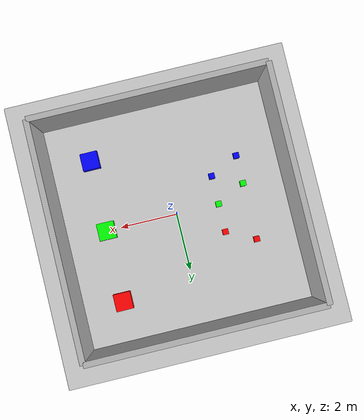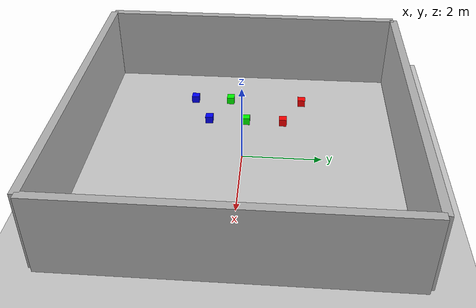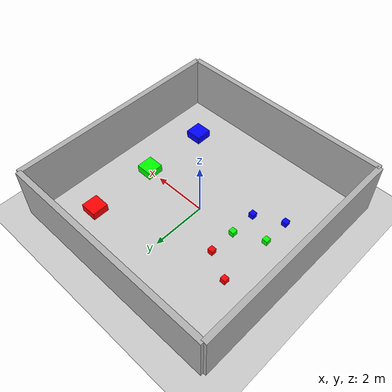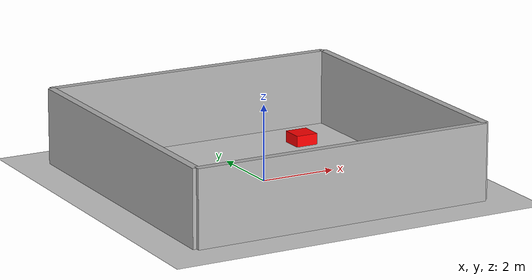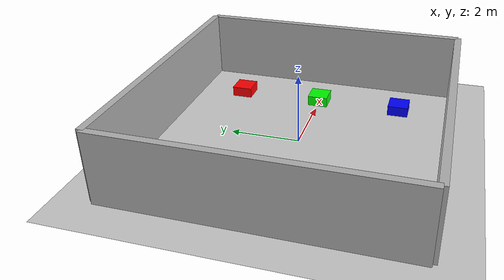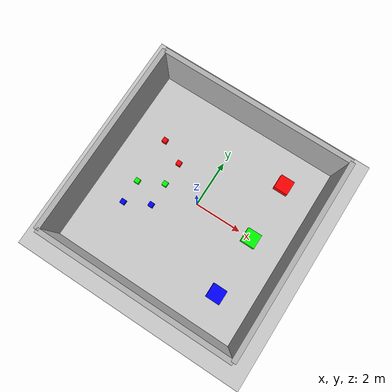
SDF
<?xml version="1.0"?>
<sdf version="1.6">
  <world name="warehouse">

    <!-- ===== LIGHTING ===== -->
    <include>
      <uri>model://sun</uri>
    </include>

    <!-- ===== GROUND PLANE ===== -->
    <include>
      <uri>model://ground_plane</uri>
    </include>

    <!-- ===== WAREHOUSE WALLS ===== -->

    <!-- South Wall -->
    <model name="wall_south">
      <static>true</static>
      <pose>0 -4 1 0 0 0</pose>
      <link name="link">
        <collision name="col"><geometry><box><size>8 0.2 2</size></box></geometry></collision>
        <visual name="vis">
          <geometry><box><size>8 0.2 2</size></box></geometry>
          <material><ambient>0.7 0.7 0.7 1</ambient></material>
        </visual>
      </link>
    </model>

    <!-- North Wall -->
    <model name="wall_north">
      <static>true</static>
      <pose>0 4 1 0 0 0</pose>
      <link name="link">
        <collision name="col"><geometry><box><size>8 0.2 2</size></box></geometry></collision>
        <visual name="vis">
          <geometry><box><size>8 0.2 2</size></box></geometry>
          <material><ambient>0.7 0.7 0.7 1</ambient></material>
        </visual>
      </link>
    </model>

    <!-- West Wall -->
    <model name="wall_west">
      <static>true</static>
      <pose>-4 0 1 0 0 0</pose>
      <link name="link">
        <collision name="col"><geometry><box><size>0.2 8 2</size></box></geometry></collision>
        <visual name="vis">
          <geometry><box><size>0.2 8 2</size></box></geometry>
          <material><ambient>0.7 0.7 0.7 1</ambient></material>
        </visual>
      </link>
    </model>

    <!-- East Wall -->
    <model name="wall_east">
      <static>true</static>
      <pose>4 0 1 0 0 0</pose>
      <link name="link">
        <collision name="col"><geometry><box><size>0.2 8 2</size></box></geometry></collision>
        <visual name="vis">
          <geometry><box><size>0.2 8 2</size></box></geometry>
          <material><ambient>0.7 0.7 0.7 1</ambient></material>
        </visual>
      </link>
    </model>

    <!-- ===== SORTING BINS ===== -->

    <!-- Red Bin -->
    <model name="bin_red">
      <static>true</static>
      <pose>2.5 2.5 0.15 0 0 0</pose>
      <link name="link">
        <collision name="col"><geometry><box><size>0.6 0.6 0.3</size></box></geometry></collision>
        <visual name="vis">
          <geometry><box><size>0.6 0.6 0.3</size></box></geometry>
          <material><ambient>1 0 0 1</ambient><diffuse>1 0 0 1</diffuse></material>
        </visual>
      </link>
    </model>

    <!-- Green Bin -->
    <model name="bin_green">
      <static>true</static>
      <pose>2.5 0 0.15 0 0 0</pose>
      <link name="link">
        <collision name="col"><geometry><box><size>0.6 0.6 0.3</size></box></geometry></collision>
        <visual name="vis">
          <geometry><box><size>0.6 0.6 0.3</size></box></geometry>
          <material><ambient>0 1 0 1</ambient><diffuse>0 1 0 1</diffuse></material>
        </visual>
      </link>
    </model>

    <!-- Blue Bin -->
    <model name="bin_blue">
      <static>true</static>
      <pose>2.5 -2.5 0.15 0 0 0</pose>
      <link name="link">
        <collision name="col"><geometry><box><size>0.6 0.6 0.3</size></box></geometry></collision>
        <visual name="vis">
          <geometry><box><size>0.6 0.6 0.3</size></box></geometry>
          <material><ambient>0 0 1 1</ambient><diffuse>0 0 1 1</diffuse></material>
        </visual>
      </link>
    </model>

    <!-- ===== COLOURED PACKAGES (to be picked) ===== -->

    <!-- Red Package 1 -->
    <model name="pkg_red_1">
      <static>false</static>
      <pose>-1.5 1.0 0.1 0 0 0</pose>
      <link name="link">
        <inertial><mass>0.3</mass></inertial>
        <collision name="col"><geometry><box><size>0.2 0.2 0.2</size></box></geometry></collision>
        <visual name="vis">
          <geometry><box><size>0.2 0.2 0.2</size></box></geometry>
          <material><ambient>1 0 0 1</ambient><diffuse>1 0 0 1</diffuse></material>
        </visual>
      </link>
    </model>

    <!-- Green Package 1 -->
    <model name="pkg_green_1">
      <static>false</static>
      <pose>-1.5 0.0 0.1 0 0 0</pose>
      <link name="link">
        <inertial><mass>0.3</mass></inertial>
        <collision name="col"><geometry><box><size>0.2 0.2 0.2</size></box></geometry></collision>
        <visual name="vis">
          <geometry><box><size>0.2 0.2 0.2</size></box></geometry>
          <material><ambient>0 1 0 1</ambient><diffuse>0 1 0 1</diffuse></material>
        </visual>
      </link>
    </model>

    <!-- Blue Package 1 -->
    <model name="pkg_blue_1">
      <static>false</static>
      <pose>-1.5 -1.0 0.1 0 0 0</pose>
      <link name="link">
        <inertial><mass>0.3</mass></inertial>
        <collision name="col"><geometry><box><size>0.2 0.2 0.2</size></box></geometry></collision>
        <visual name="vis">
          <geometry><box><size>0.2 0.2 0.2</size></box></geometry>
          <material><ambient>0 0 1 1</ambient><diffuse>0 0 1 1</diffuse></material>
        </visual>
      </link>
    </model>

    <!-- Red Package 2 -->
    <model name="pkg_red_2">
      <static>false</static>
      <pose>-2.5 1.5 0.1 0 0 0</pose>
      <link name="link">
        <inertial><mass>0.3</mass></inertial>
        <collision name="col"><geometry><box><size>0.2 0.2 0.2</size></box></geometry></collision>
        <visual name="vis">
          <geometry><box><size>0.2 0.2 0.2</size></box></geometry>
          <material><ambient>1 0 0 1</ambient><diffuse>1 0 0 1</diffuse></material>
        </visual>
      </link>
    </model>

    <!-- Green Package 2 -->
    <model name="pkg_green_2">
      <static>false</static>
      <pose>-2.5 -0.5 0.1 0 0 0</pose>
      <link name="link">
        <inertial><mass>0.3</mass></inertial>
        <collision name="col"><geometry><box><size>0.2 0.2 0.2</size></box></geometry></collision>
        <visual name="vis">
          <geometry><box><size>0.2 0.2 0.2</size></box></geometry>
          <material><ambient>0 1 0 1</ambient><diffuse>0 1 0 1</diffuse></material>
        </visual>
      </link>
    </model>

    <!-- Blue Package 2 -->
    <model name="pkg_blue_2">
      <static>false</static>
      <pose>-2.5 -1.5 0.1 0 0 0</pose>
      <link name="link">
        <inertial><mass>0.3</mass></inertial>
        <collision name="col"><geometry><box><size>0.2 0.2 0.2</size></box></geometry></collision>
        <visual name="vis">
          <geometry><box><size>0.2 0.2 0.2</size></box></geometry>
          <material><ambient>0 0 1 1</ambient><diffuse>0 0 1 1</diffuse></material>
        </visual>
      </link>
    </model>

  </world>
</sdf>
```

Save and close.

---

### 3.2 — Quick preview of the layout
```
+----------------------------------+
|  WAREHOUSE                       |
|                                  |
|  [pkg_red]   [pkg_green]         |
|  [pkg_blue]                      |
|        🤖 (robot starts here)    |
|                    [BIN_RED]     |
|                    [BIN_GREEN]   |
|                    [BIN_BLUE]    |
+----------------------------------+
